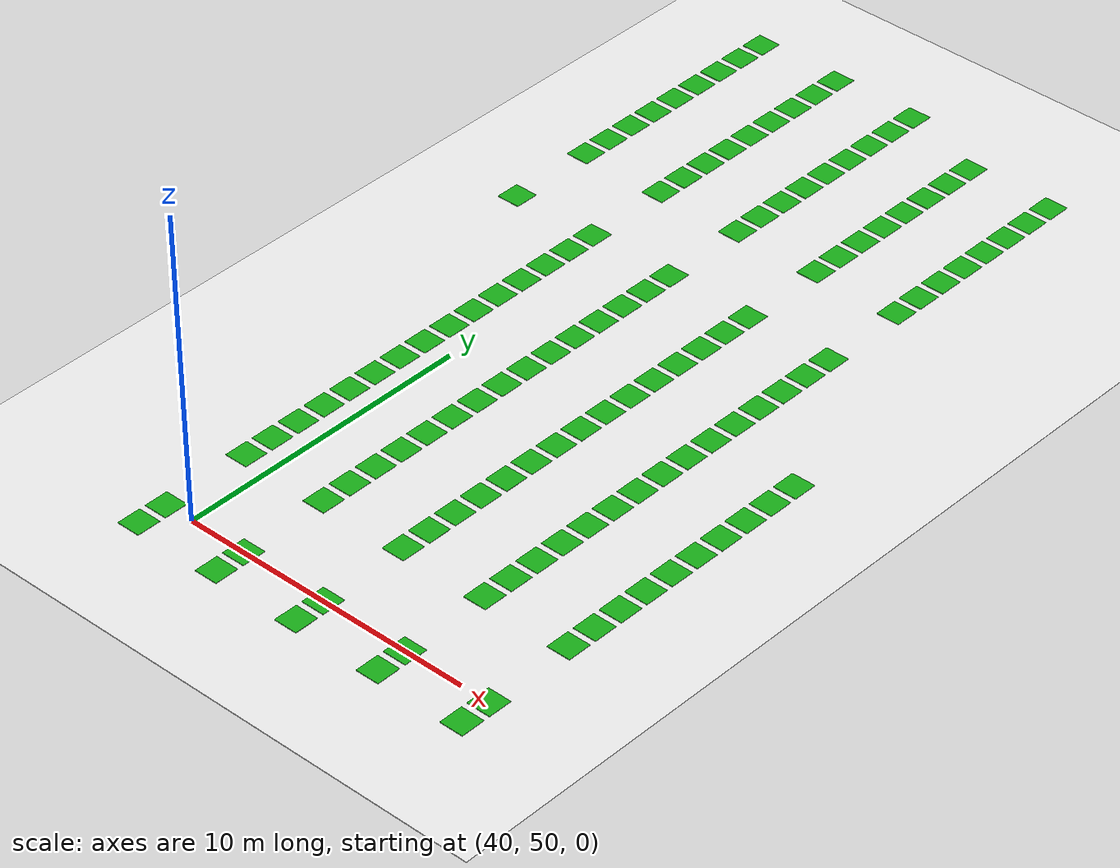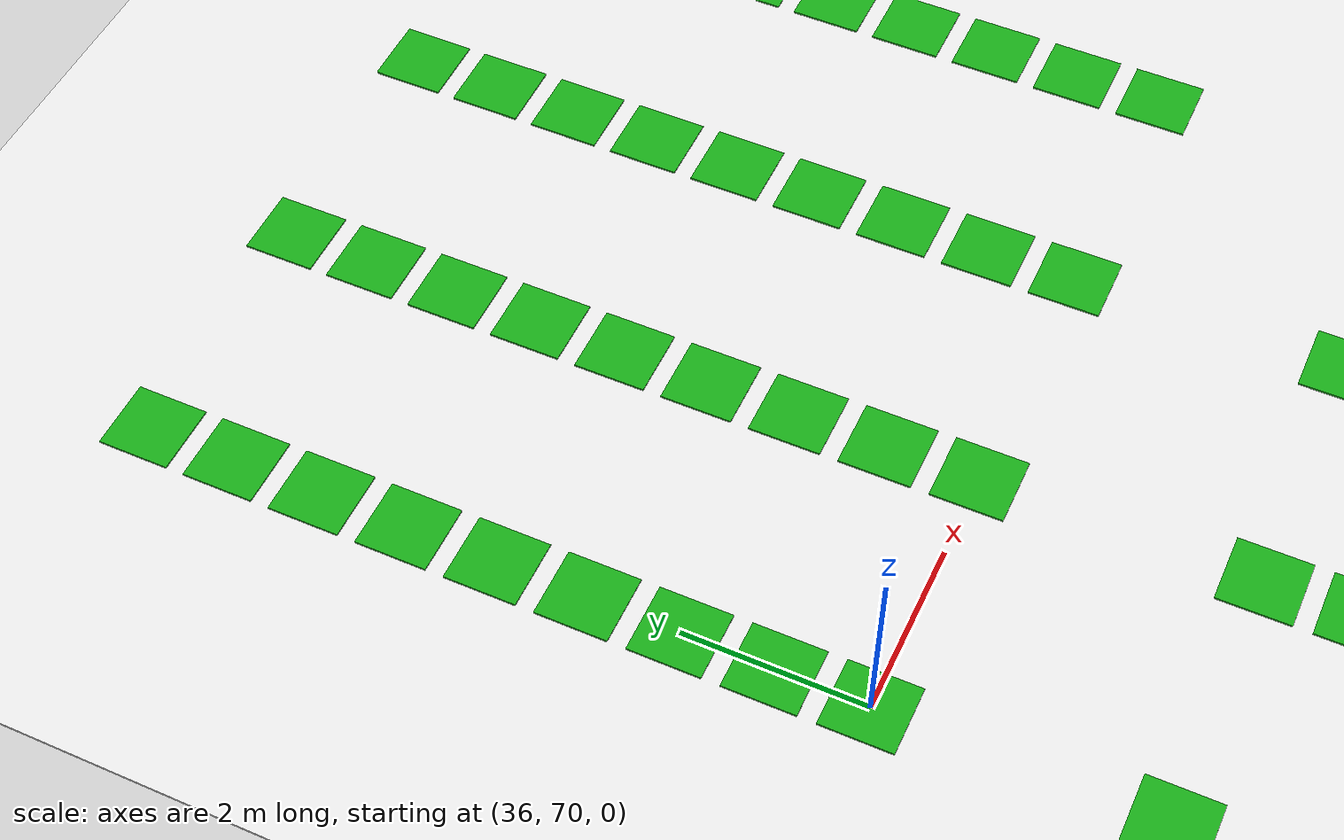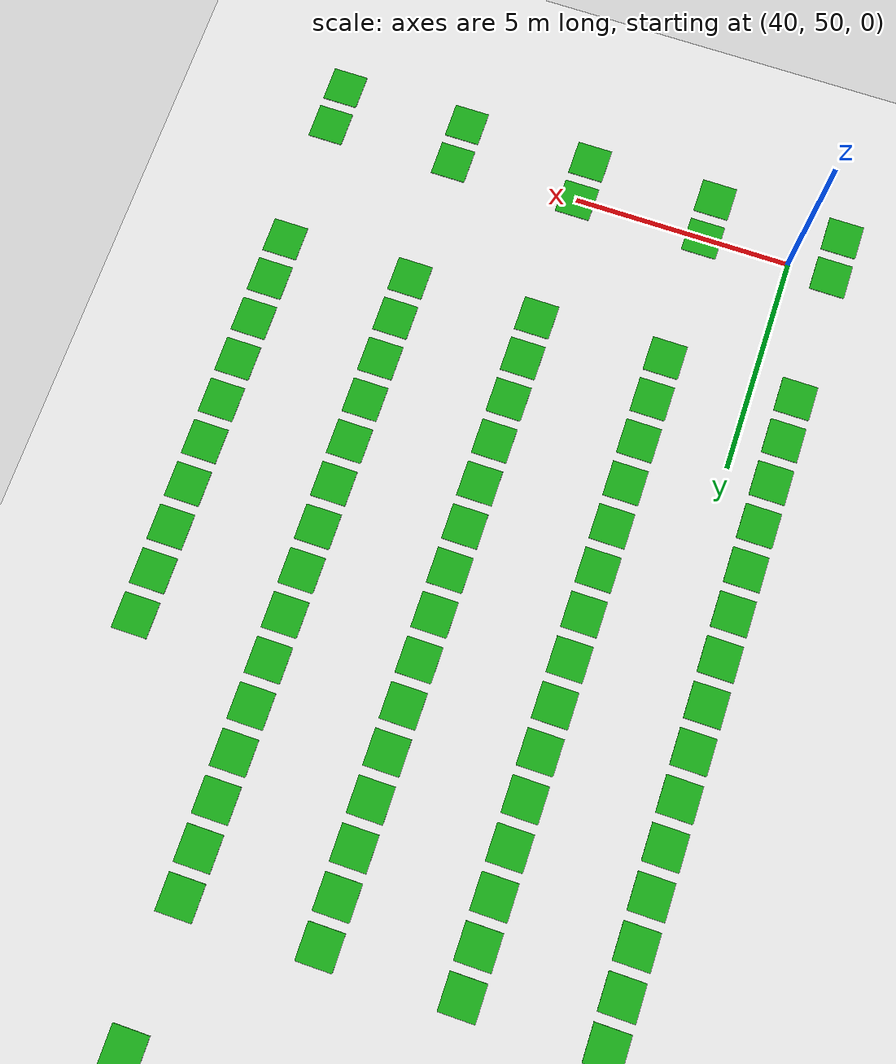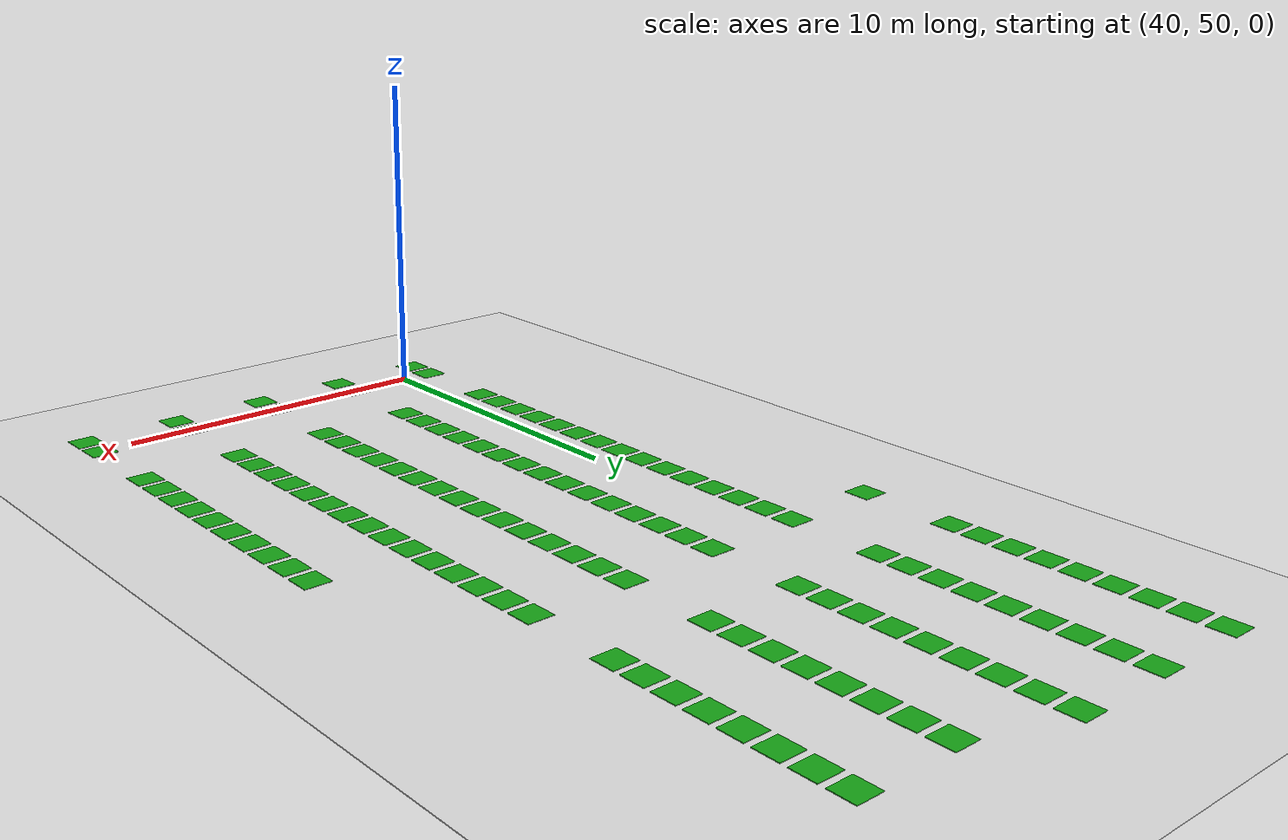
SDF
<sdf version="1.10">
 <world name="my_map">
  <model name="warehouse_floor">
   <static>true</static>
   <pose>39.0
        51.5
        0.0
        0 0 0</pose>
   <link name="floor_link">
    <visual name="floor_visual">
     <geometry><box><size>79.0
                104.0
                0.02</size></box></geometry>
     <material><ambient>0.95 0.95 0.95 1</ambient><diffuse>0.95 0.95 0.95 1</diffuse></material>
    </visual>
   </link>
  </model>
  <model name="shelf_537">
   <static>true</static>
   <pose>36.0
        78.0
        0.02
        0 0 0</pose>
   <link name="link">
    <visual name="visual">
     <geometry><box><size>0.8
                0.8
                0.02</size></box></geometry>
     <material><ambient>0.10 0.70 0.10 1</ambient><diffuse>0.10 0.70 0.10 1</diffuse></material>
    </visual>
   </link>
  </model>
  <model name="shelf_538">
   <static>true</static>
   <pose>39.0
        78.0
        0.02
        0 0 0</pose>
   <link name="link">
    <visual name="visual">
     <geometry><box><size>0.8
                0.8
                0.02</size></box></geometry>
     <material><ambient>0.10 0.70 0.10 1</ambient><diffuse>0.10 0.70 0.10 1</diffuse></material>
    </visual>
   </link>
  </model>
  <model name="shelf_539">
   <static>true</static>
   <pose>42.0
        78.0
        0.02
        0 0 0</pose>
   <link name="link">
    <visual name="visual">
     <geometry><box><size>0.8
                0.8
                0.02</size></box></geometry>
     <material><ambient>0.10 0.70 0.10 1</ambient><diffuse>0.10 0.70 0.10 1</diffuse></material>
    </visual>
   </link>
  </model>
  <model name="shelf_562">
   <static>true</static>
   <pose>36.0
        77.0
        0.02
        0 0 0</pose>
   <link name="link">
    <visual name="visual">
     <geometry><box><size>0.8
                0.8
                0.02</size></box></geometry>
     <material><ambient>0.10 0.70 0.10 1</ambient><diffuse>0.10 0.70 0.10 1</diffuse></material>
    </visual>
   </link>
  </model>
  <model name="shelf_563">
   <static>true</static>
   <pose>39.0
        77.0
        0.02
        0 0 0</pose>
   <link name="link">
    <visual name="visual">
     <geometry><box><size>0.8
                0.8
                0.02</size></box></geometry>
     <material><ambient>0.10 0.70 0.10 1</ambient><diffuse>0.10 0.70 0.10 1</diffuse></material>
    </visual>
   </link>
  </model>
  <model name="shelf_564">
   <static>true</static>
   <pose>42.0
        77.0
        0.02
        0 0 0</pose>
   <link name="link">
    <visual name="visual">
     <geometry><box><size>0.8
                0.8
                0.02</size></box></geometry>
     <material><ambient>0.10 0.70 0.10 1</ambient><diffuse>0.10 0.70 0.10 1</diffuse></material>
    </visual>
   </link>
  </model>
  <model name="shelf_565">
   <static>true</static>
   <pose>45.0
        77.0
        0.02
        0 0 0</pose>
   <link name="link">
    <visual name="visual">
     <geometry><box><size>0.8
                0.8
                0.02</size></box></geometry>
     <material><ambient>0.10 0.70 0.10 1</ambient><diffuse>0.10 0.70 0.10 1</diffuse></material>
    </visual>
   </link>
  </model>
  <model name="shelf_566">
   <static>true</static>
   <pose>48.0
        77.0
        0.02
        0 0 0</pose>
   <link name="link">
    <visual name="visual">
     <geometry><box><size>0.8
                0.8
                0.02</size></box></geometry>
     <material><ambient>0.10 0.70 0.10 1</ambient><diffuse>0.10 0.70 0.10 1</diffuse></material>
    </visual>
   </link>
  </model>
  <model name="shelf_587">
   <static>true</static>
   <pose>36.0
        76.0
        0.02
        0 0 0</pose>
   <link name="link">
    <visual name="visual">
     <geometry><box><size>0.8
                0.8
                0.02</size></box></geometry>
     <material><ambient>0.10 0.70 0.10 1</ambient><diffuse>0.10 0.70 0.10 1</diffuse></material>
    </visual>
   </link>
  </model>
  <model name="shelf_588">
   <static>true</static>
   <pose>39.0
        76.0
        0.02
        0 0 0</pose>
   <link name="link">
    <visual name="visual">
     <geometry><box><size>0.8
                0.8
                0.02</size></box></geometry>
     <material><ambient>0.10 0.70 0.10 1</ambient><diffuse>0.10 0.70 0.10 1</diffuse></material>
    </visual>
   </link>
  </model>
  <model name="shelf_589">
   <static>true</static>
   <pose>42.0
        76.0
        0.02
        0 0 0</pose>
   <link name="link">
    <visual name="visual">
     <geometry><box><size>0.8
                0.8
                0.02</size></box></geometry>
     <material><ambient>0.10 0.70 0.10 1</ambient><diffuse>0.10 0.70 0.10 1</diffuse></material>
    </visual>
   </link>
  </model>
  <model name="shelf_590">
   <static>true</static>
   <pose>45.0
        76.0
        0.02
        0 0 0</pose>
   <link name="link">
    <visual name="visual">
     <geometry><box><size>0.8
                0.8
                0.02</size></box></geometry>
     <material><ambient>0.10 0.70 0.10 1</ambient><diffuse>0.10 0.70 0.10 1</diffuse></material>
    </visual>
   </link>
  </model>
  <model name="shelf_591">
   <static>true</static>
   <pose>48.0
        76.0
        0.02
        0 0 0</pose>
   <link name="link">
    <visual name="visual">
     <geometry><box><size>0.8
                0.8
                0.02</size></box></geometry>
     <material><ambient>0.10 0.70 0.10 1</ambient><diffuse>0.10 0.70 0.10 1</diffuse></material>
    </visual>
   </link>
  </model>
  <model name="shelf_612">
   <static>true</static>
   <pose>36.0
        75.0
        0.02
        0 0 0</pose>
   <link name="link">
    <visual name="visual">
     <geometry><box><size>0.8
                0.8
                0.02</size></box></geometry>
     <material><ambient>0.10 0.70 0.10 1</ambient><diffuse>0.10 0.70 0.10 1</diffuse></material>
    </visual>
   </link>
  </model>
  <model name="shelf_613">
   <static>true</static>
   <pose>39.0
        75.0
        0.02
        0 0 0</pose>
   <link name="link">
    <visual name="visual">
     <geometry><box><size>0.8
                0.8
                0.02</size></box></geometry>
     <material><ambient>0.10 0.70 0.10 1</ambient><diffuse>0.10 0.70 0.10 1</diffuse></material>
    </visual>
   </link>
  </model>
  <model name="shelf_614">
   <static>true</static>
   <pose>42.0
        75.0
        0.02
        0 0 0</pose>
   <link name="link">
    <visual name="visual">
     <geometry><box><size>0.8
                0.8
                0.02</size></box></geometry>
     <material><ambient>0.10 0.70 0.10 1</ambient><diffuse>0.10 0.70 0.10 1</diffuse></material>
    </visual>
   </link>
  </model>
  <model name="shelf_615">
   <static>true</static>
   <pose>45.0
        75.0
        0.02
        0 0 0</pose>
   <link name="link">
    <visual name="visual">
     <geometry><box><size>0.8
                0.8
                0.02</size></box></geometry>
     <material><ambient>0.10 0.70 0.10 1</ambient><diffuse>0.10 0.70 0.10 1</diffuse></material>
    </visual>
   </link>
  </model>
  <model name="shelf_616">
   <static>true</static>
   <pose>48.0
        75.0
        0.02
        0 0 0</pose>
   <link name="link">
    <visual name="visual">
     <geometry><box><size>0.8
                0.8
                0.02</size></box></geometry>
     <material><ambient>0.10 0.70 0.10 1</ambient><diffuse>0.10 0.70 0.10 1</diffuse></material>
    </visual>
   </link>
  </model>
  <model name="shelf_637">
   <static>true</static>
   <pose>36.0
        74.0
        0.02
        0 0 0</pose>
   <link name="link">
    <visual name="visual">
     <geometry><box><size>0.8
                0.8
                0.02</size></box></geometry>
     <material><ambient>0.10 0.70 0.10 1</ambient><diffuse>0.10 0.70 0.10 1</diffuse></material>
    </visual>
   </link>
  </model>
  <model name="shelf_638">
   <static>true</static>
   <pose>39.0
        74.0
        0.02
        0 0 0</pose>
   <link name="link">
    <visual name="visual">
     <geometry><box><size>0.8
                0.8
                0.02</size></box></geometry>
     <material><ambient>0.10 0.70 0.10 1</ambient><diffuse>0.10 0.70 0.10 1</diffuse></material>
    </visual>
   </link>
  </model>
  <model name="shelf_639">
   <static>true</static>
   <pose>42.0
        74.0
        0.02
        0 0 0</pose>
   <link name="link">
    <visual name="visual">
     <geometry><box><size>0.8
                0.8
                0.02</size></box></geometry>
     <material><ambient>0.10 0.70 0.10 1</ambient><diffuse>0.10 0.70 0.10 1</diffuse></material>
    </visual>
   </link>
  </model>
  <model name="shelf_640">
   <static>true</static>
   <pose>45.0
        74.0
        0.02
        0 0 0</pose>
   <link name="link">
    <visual name="visual">
     <geometry><box><size>0.8
                0.8
                0.02</size></box></geometry>
     <material><ambient>0.10 0.70 0.10 1</ambient><diffuse>0.10 0.70 0.10 1</diffuse></material>
    </visual>
   </link>
  </model>
  <model name="shelf_641">
   <static>true</static>
   <pose>48.0
        74.0
        0.02
        0 0 0</pose>
   <link name="link">
    <visual name="visual">
     <geometry><box><size>0.8
                0.8
                0.02</size></box></geometry>
     <material><ambient>0.10 0.70 0.10 1</ambient><diffuse>0.10 0.70 0.10 1</diffuse></material>
    </visual>
   </link>
  </model>
  <model name="shelf_662">
   <static>true</static>
   <pose>36.0
        73.0
        0.02
        0 0 0</pose>
   <link name="link">
    <visual name="visual">
     <geometry><box><size>0.8
                0.8
                0.02</size></box></geometry>
     <material><ambient>0.10 0.70 0.10 1</ambient><diffuse>0.10 0.70 0.10 1</diffuse></material>
    </visual>
   </link>
  </model>
  <model name="shelf_663">
   <static>true</static>
   <pose>39.0
        73.0
        0.02
        0 0 0</pose>
   <link name="link">
    <visual name="visual">
     <geometry><box><size>0.8
                0.8
                0.02</size></box></geometry>
     <material><ambient>0.10 0.70 0.10 1</ambient><diffuse>0.10 0.70 0.10 1</diffuse></material>
    </visual>
   </link>
  </model>
  <model name="shelf_664">
   <static>true</static>
   <pose>42.0
        73.0
        0.02
        0 0 0</pose>
   <link name="link">
    <visual name="visual">
     <geometry><box><size>0.8
                0.8
                0.02</size></box></geometry>
     <material><ambient>0.10 0.70 0.10 1</ambient><diffuse>0.10 0.70 0.10 1</diffuse></material>
    </visual>
   </link>
  </model>
  <model name="shelf_665">
   <static>true</static>
   <pose>45.0
        73.0
        0.02
        0 0 0</pose>
   <link name="link">
    <visual name="visual">
     <geometry><box><size>0.8
                0.8
                0.02</size></box></geometry>
     <material><ambient>0.10 0.70 0.10 1</ambient><diffuse>0.10 0.70 0.10 1</diffuse></material>
    </visual>
   </link>
  </model>
  <model name="shelf_666">
   <static>true</static>
   <pose>48.0
        73.0
        0.02
        0 0 0</pose>
   <link name="link">
    <visual name="visual">
     <geometry><box><size>0.8
                0.8
                0.02</size></box></geometry>
     <material><ambient>0.10 0.70 0.10 1</ambient><diffuse>0.10 0.70 0.10 1</diffuse></material>
    </visual>
   </link>
  </model>
  <model name="shelf_687">
   <static>true</static>
   <pose>36.0
        72.0
        0.02
        0 0 0</pose>
   <link name="link">
    <visual name="visual">
     <geometry><box><size>0.8
                0.8
                0.02</size></box></geometry>
     <material><ambient>0.10 0.70 0.10 1</ambient><diffuse>0.10 0.70 0.10 1</diffuse></material>
    </visual>
   </link>
  </model>
  <model name="shelf_688">
   <static>true</static>
   <pose>39.0
        72.0
        0.02
        0 0 0</pose>
   <link name="link">
    <visual name="visual">
     <geometry><box><size>0.8
                0.8
                0.02</size></box></geometry>
     <material><ambient>0.10 0.70 0.10 1</ambient><diffuse>0.10 0.70 0.10 1</diffuse></material>
    </visual>
   </link>
  </model>
  <model name="shelf_689">
   <static>true</static>
   <pose>42.0
        72.0
        0.02
        0 0 0</pose>
   <link name="link">
    <visual name="visual">
     <geometry><box><size>0.8
                0.8
                0.02</size></box></geometry>
     <material><ambient>0.10 0.70 0.10 1</ambient><diffuse>0.10 0.70 0.10 1</diffuse></material>
    </visual>
   </link>
  </model>
  <model name="shelf_690">
   <static>true</static>
   <pose>45.0
        72.0
        0.02
        0 0 0</pose>
   <link name="link">
    <visual name="visual">
     <geometry><box><size>0.8
                0.8
                0.02</size></box></geometry>
     <material><ambient>0.10 0.70 0.10 1</ambient><diffuse>0.10 0.70 0.10 1</diffuse></material>
    </visual>
   </link>
  </model>
  <model name="shelf_691">
   <static>true</static>
   <pose>48.0
        72.0
        0.02
        0 0 0</pose>
   <link name="link">
    <visual name="visual">
     <geometry><box><size>0.8
                0.8
                0.02</size></box></geometry>
     <material><ambient>0.10 0.70 0.10 1</ambient><diffuse>0.10 0.70 0.10 1</diffuse></material>
    </visual>
   </link>
  </model>
  <model name="shelf_712">
   <static>true</static>
   <pose>36.0
        71.0
        0.02
        0 0 0</pose>
   <link name="link">
    <visual name="visual">
     <geometry><box><size>0.8
                0.8
                0.02</size></box></geometry>
     <material><ambient>0.10 0.70 0.10 1</ambient><diffuse>0.10 0.70 0.10 1</diffuse></material>
    </visual>
   </link>
  </model>
  <model name="shelf_713">
   <static>true</static>
   <pose>39.0
        71.0
        0.02
        0 0 0</pose>
   <link name="link">
    <visual name="visual">
     <geometry><box><size>0.8
                0.8
                0.02</size></box></geometry>
     <material><ambient>0.10 0.70 0.10 1</ambient><diffuse>0.10 0.70 0.10 1</diffuse></material>
    </visual>
   </link>
  </model>
  <model name="shelf_714">
   <static>true</static>
   <pose>42.0
        71.0
        0.02
        0 0 0</pose>
   <link name="link">
    <visual name="visual">
     <geometry><box><size>0.8
                0.8
                0.02</size></box></geometry>
     <material><ambient>0.10 0.70 0.10 1</ambient><diffuse>0.10 0.70 0.10 1</diffuse></material>
    </visual>
   </link>
  </model>
  <model name="shelf_715">
   <static>true</static>
   <pose>45.0
        71.0
        0.02
        0 0 0</pose>
   <link name="link">
    <visual name="visual">
     <geometry><box><size>0.8
                0.8
                0.02</size></box></geometry>
     <material><ambient>0.10 0.70 0.10 1</ambient><diffuse>0.10 0.70 0.10 1</diffuse></material>
    </visual>
   </link>
  </model>
  <model name="shelf_716">
   <static>true</static>
   <pose>48.0
        71.0
        0.02
        0 0 0</pose>
   <link name="link">
    <visual name="visual">
     <geometry><box><size>0.8
                0.8
                0.02</size></box></geometry>
     <material><ambient>0.10 0.70 0.10 1</ambient><diffuse>0.10 0.70 0.10 1</diffuse></material>
    </visual>
   </link>
  </model>
  <model name="shelf_737">
   <static>true</static>
   <pose>36.0
        70.0
        0.02
        0 0 0</pose>
   <link name="link">
    <visual name="visual">
     <geometry><box><size>0.8
                0.8
                0.02</size></box></geometry>
     <material><ambient>0.10 0.70 0.10 1</ambient><diffuse>0.10 0.70 0.10 1</diffuse></material>
    </visual>
   </link>
  </model>
  <model name="shelf_738">
   <static>true</static>
   <pose>39.0
        70.0
        0.02
        0 0 0</pose>
   <link name="link">
    <visual name="visual">
     <geometry><box><size>0.8
                0.8
                0.02</size></box></geometry>
     <material><ambient>0.10 0.70 0.10 1</ambient><diffuse>0.10 0.70 0.10 1</diffuse></material>
    </visual>
   </link>
  </model>
  <model name="shelf_739">
   <static>true</static>
   <pose>42.0
        70.0
        0.02
        0 0 0</pose>
   <link name="link">
    <visual name="visual">
     <geometry><box><size>0.8
                0.8
                0.02</size></box></geometry>
     <material><ambient>0.10 0.70 0.10 1</ambient><diffuse>0.10 0.70 0.10 1</diffuse></material>
    </visual>
   </link>
  </model>
  <model name="shelf_740">
   <static>true</static>
   <pose>45.0
        70.0
        0.02
        0 0 0</pose>
   <link name="link">
    <visual name="visual">
     <geometry><box><size>0.8
                0.8
                0.02</size></box></geometry>
     <material><ambient>0.10 0.70 0.10 1</ambient><diffuse>0.10 0.70 0.10 1</diffuse></material>
    </visual>
   </link>
  </model>
  <model name="shelf_741">
   <static>true</static>
   <pose>48.0
        70.0
        0.02
        0 0 0</pose>
   <link name="link">
    <visual name="visual">
     <geometry><box><size>0.8
                0.8
                0.02</size></box></geometry>
     <material><ambient>0.10 0.70 0.10 1</ambient><diffuse>0.10 0.70 0.10 1</diffuse></material>
    </visual>
   </link>
  </model>
  <model name="shelf_762">
   <static>true</static>
   <pose>36.0
        67.0
        0.02
        0 0 0</pose>
   <link name="link">
    <visual name="visual">
     <geometry><box><size>0.8
                0.8
                0.02</size></box></geometry>
     <material><ambient>0.10 0.70 0.10 1</ambient><diffuse>0.10 0.70 0.10 1</diffuse></material>
    </visual>
   </link>
  </model>
  <model name="shelf_763">
   <static>true</static>
   <pose>39.0
        67.0
        0.02
        0 0 0</pose>
   <link name="link">
    <visual name="visual">
     <geometry><box><size>0.8
                0.8
                0.02</size></box></geometry>
     <material><ambient>0.10 0.70 0.10 1</ambient><diffuse>0.10 0.70 0.10 1</diffuse></material>
    </visual>
   </link>
  </model>
  <model name="shelf_764">
   <static>true</static>
   <pose>42.0
        67.0
        0.02
        0 0 0</pose>
   <link name="link">
    <visual name="visual">
     <geometry><box><size>0.8
                0.8
                0.02</size></box></geometry>
     <material><ambient>0.10 0.70 0.10 1</ambient><diffuse>0.10 0.70 0.10 1</diffuse></material>
    </visual>
   </link>
  </model>
  <model name="shelf_765">
   <static>true</static>
   <pose>45.0
        67.0
        0.02
        0 0 0</pose>
   <link name="link">
    <visual name="visual">
     <geometry><box><size>0.8
                0.8
                0.02</size></box></geometry>
     <material><ambient>0.10 0.70 0.10 1</ambient><diffuse>0.10 0.70 0.10 1</diffuse></material>
    </visual>
   </link>
  </model>
  <model name="shelf_766">
   <static>true</static>
   <pose>48.0
        67.0
        0.02
        0 0 0</pose>
   <link name="link">
    <visual name="visual">
     <geometry><box><size>0.8
                0.8
                0.02</size></box></geometry>
     <material><ambient>0.10 0.70 0.10 1</ambient><diffuse>0.10 0.70 0.10 1</diffuse></material>
    </visual>
   </link>
  </model>
  <model name="shelf_788">
   <static>true</static>
   <pose>39.0
        66.0
        0.02
        0 0 0</pose>
   <link name="link">
    <visual name="visual">
     <geometry><box><size>0.8
                0.8
                0.02</size></box></geometry>
     <material><ambient>0.10 0.70 0.10 1</ambient><diffuse>0.10 0.70 0.10 1</diffuse></material>
    </visual>
   </link>
  </model>
  <model name="shelf_789">
   <static>true</static>
   <pose>42.0
        66.0
        0.02
        0 0 0</pose>
   <link name="link">
    <visual name="visual">
     <geometry><box><size>0.8
                0.8
                0.02</size></box></geometry>
     <material><ambient>0.10 0.70 0.10 1</ambient><diffuse>0.10 0.70 0.10 1</diffuse></material>
    </visual>
   </link>
  </model>
  <model name="shelf_790">
   <static>true</static>
   <pose>45.0
        66.0
        0.02
        0 0 0</pose>
   <link name="link">
    <visual name="visual">
     <geometry><box><size>0.8
                0.8
                0.02</size></box></geometry>
     <material><ambient>0.10 0.70 0.10 1</ambient><diffuse>0.10 0.70 0.10 1</diffuse></material>
    </visual>
   </link>
  </model>
  <model name="shelf_791">
   <static>true</static>
   <pose>48.0
        66.0
        0.02
        0 0 0</pose>
   <link name="link">
    <visual name="visual">
     <geometry><box><size>0.8
                0.8
                0.02</size></box></geometry>
     <material><ambient>0.10 0.70 0.10 1</ambient><diffuse>0.10 0.70 0.10 1</diffuse></material>
    </visual>
   </link>
  </model>
  <model name="shelf_813">
   <static>true</static>
   <pose>39.0
        65.0
        0.02
        0 0 0</pose>
   <link name="link">
    <visual name="visual">
     <geometry><box><size>0.8
                0.8
                0.02</size></box></geometry>
     <material><ambient>0.10 0.70 0.10 1</ambient><diffuse>0.10 0.70 0.10 1</diffuse></material>
    </visual>
   </link>
  </model>
  <model name="shelf_814">
   <static>true</static>
   <pose>42.0
        65.0
        0.02
        0 0 0</pose>
   <link name="link">
    <visual name="visual">
     <geometry><box><size>0.8
                0.8
                0.02</size></box></geometry>
     <material><ambient>0.10 0.70 0.10 1</ambient><diffuse>0.10 0.70 0.10 1</diffuse></material>
    </visual>
   </link>
  </model>
  <model name="shelf_815">
   <static>true</static>
   <pose>45.0
        65.0
        0.02
        0 0 0</pose>
   <link name="link">
    <visual name="visual">
     <geometry><box><size>0.8
                0.8
                0.02</size></box></geometry>
     <material><ambient>0.10 0.70 0.10 1</ambient><diffuse>0.10 0.70 0.10 1</diffuse></material>
    </visual>
   </link>
  </model>
  <model name="shelf_816">
   <static>true</static>
   <pose>48.0
        65.0
        0.02
        0 0 0</pose>
   <link name="link">
    <visual name="visual">
     <geometry><box><size>0.8
                0.8
                0.02</size></box></geometry>
     <material><ambient>0.10 0.70 0.10 1</ambient><diffuse>0.10 0.70 0.10 1</diffuse></material>
    </visual>
   </link>
  </model>
  <model name="shelf_838">
   <static>true</static>
   <pose>39.0
        64.0
        0.02
        0 0 0</pose>
   <link name="link">
    <visual name="visual">
     <geometry><box><size>0.8
                0.8
                0.02</size></box></geometry>
     <material><ambient>0.10 0.70 0.10 1</ambient><diffuse>0.10 0.70 0.10 1</diffuse></material>
    </visual>
   </link>
  </model>
  <model name="shelf_839">
   <static>true</static>
   <pose>42.0
        64.0
        0.02
        0 0 0</pose>
   <link name="link">
    <visual name="visual">
     <geometry><box><size>0.8
                0.8
                0.02</size></box></geometry>
     <material><ambient>0.10 0.70 0.10 1</ambient><diffuse>0.10 0.70 0.10 1</diffuse></material>
    </visual>
   </link>
  </model>
  <model name="shelf_840">
   <static>true</static>
   <pose>45.0
        64.0
        0.02
        0 0 0</pose>
   <link name="link">
    <visual name="visual">
     <geometry><box><size>0.8
                0.8
                0.02</size></box></geometry>
     <material><ambient>0.10 0.70 0.10 1</ambient><diffuse>0.10 0.70 0.10 1</diffuse></material>
    </visual>
   </link>
  </model>
  <model name="shelf_841">
   <static>true</static>
   <pose>48.0
        64.0
        0.02
        0 0 0</pose>
   <link name="link">
    <visual name="visual">
     <geometry><box><size>0.8
                0.8
                0.02</size></box></geometry>
     <material><ambient>0.10 0.70 0.10 1</ambient><diffuse>0.10 0.70 0.10 1</diffuse></material>
    </visual>
   </link>
  </model>
  <model name="shelf_863">
   <static>true</static>
   <pose>39.0
        63.0
        0.02
        0 0 0</pose>
   <link name="link">
    <visual name="visual">
     <geometry><box><size>0.8
                0.8
                0.02</size></box></geometry>
     <material><ambient>0.10 0.70 0.10 1</ambient><diffuse>0.10 0.70 0.10 1</diffuse></material>
    </visual>
   </link>
  </model>
  <model name="shelf_864">
   <static>true</static>
   <pose>42.0
        63.0
        0.02
        0 0 0</pose>
   <link name="link">
    <visual name="visual">
     <geometry><box><size>0.8
                0.8
                0.02</size></box></geometry>
     <material><ambient>0.10 0.70 0.10 1</ambient><diffuse>0.10 0.70 0.10 1</diffuse></material>
    </visual>
   </link>
  </model>
  <model name="shelf_865">
   <static>true</static>
   <pose>45.0
        63.0
        0.02
        0 0 0</pose>
   <link name="link">
    <visual name="visual">
     <geometry><box><size>0.8
                0.8
                0.02</size></box></geometry>
     <material><ambient>0.10 0.70 0.10 1</ambient><diffuse>0.10 0.70 0.10 1</diffuse></material>
    </visual>
   </link>
  </model>
  <model name="shelf_866">
   <static>true</static>
   <pose>48.0
        63.0
        0.02
        0 0 0</pose>
   <link name="link">
    <visual name="visual">
     <geometry><box><size>0.8
                0.8
                0.02</size></box></geometry>
     <material><ambient>0.10 0.70 0.10 1</ambient><diffuse>0.10 0.70 0.10 1</diffuse></material>
    </visual>
   </link>
  </model>
  <model name="shelf_888">
   <static>true</static>
   <pose>39.0
        62.0
        0.02
        0 0 0</pose>
   <link name="link">
    <visual name="visual">
     <geometry><box><size>0.8
                0.8
                0.02</size></box></geometry>
     <material><ambient>0.10 0.70 0.10 1</ambient><diffuse>0.10 0.70 0.10 1</diffuse></material>
    </visual>
   </link>
  </model>
  <model name="shelf_889">
   <static>true</static>
   <pose>42.0
        62.0
        0.02
        0 0 0</pose>
   <link name="link">
    <visual name="visual">
     <geometry><box><size>0.8
                0.8
                0.02</size></box></geometry>
     <material><ambient>0.10 0.70 0.10 1</ambient><diffuse>0.10 0.70 0.10 1</diffuse></material>
    </visual>
   </link>
  </model>
  <model name="shelf_890">
   <static>true</static>
   <pose>45.0
        62.0
        0.02
        0 0 0</pose>
   <link name="link">
    <visual name="visual">
     <geometry><box><size>0.8
                0.8
                0.02</size></box></geometry>
     <material><ambient>0.10 0.70 0.10 1</ambient><diffuse>0.10 0.70 0.10 1</diffuse></material>
    </visual>
   </link>
  </model>
  <model name="shelf_891">
   <static>true</static>
   <pose>48.0
        62.0
        0.02
        0 0 0</pose>
   <link name="link">
    <visual name="visual">
     <geometry><box><size>0.8
                0.8
                0.02</size></box></geometry>
     <material><ambient>0.10 0.70 0.10 1</ambient><diffuse>0.10 0.70 0.10 1</diffuse></material>
    </visual>
   </link>
  </model>
  <model name="shelf_892">
   <static>true</static>
   <pose>51.0
        62.0
        0.02
        0 0 0</pose>
   <link name="link">
    <visual name="visual">
     <geometry><box><size>0.8
                0.8
                0.02</size></box></geometry>
     <material><ambient>0.10 0.70 0.10 1</ambient><diffuse>0.10 0.70 0.10 1</diffuse></material>
    </visual>
   </link>
  </model>
  <model name="shelf_913">
   <static>true</static>
   <pose>39.0
        61.0
        0.02
        0 0 0</pose>
   <link name="link">
    <visual name="visual">
     <geometry><box><size>0.8
                0.8
                0.02</size></box></geometry>
     <material><ambient>0.10 0.70 0.10 1</ambient><diffuse>0.10 0.70 0.10 1</diffuse></material>
    </visual>
   </link>
  </model>
  <model name="shelf_914">
   <static>true</static>
   <pose>42.0
        61.0
        0.02
        0 0 0</pose>
   <link name="link">
    <visual name="visual">
     <geometry><box><size>0.8
                0.8
                0.02</size></box></geometry>
     <material><ambient>0.10 0.70 0.10 1</ambient><diffuse>0.10 0.70 0.10 1</diffuse></material>
    </visual>
   </link>
  </model>
  <model name="shelf_915">
   <static>true</static>
   <pose>45.0
        61.0
        0.02
        0 0 0</pose>
   <link name="link">
    <visual name="visual">
     <geometry><box><size>0.8
                0.8
                0.02</size></box></geometry>
     <material><ambient>0.10 0.70 0.10 1</ambient><diffuse>0.10 0.70 0.10 1</diffuse></material>
    </visual>
   </link>
  </model>
  <model name="shelf_916">
   <static>true</static>
   <pose>48.0
        61.0
        0.02
        0 0 0</pose>
   <link name="link">
    <visual name="visual">
     <geometry><box><size>0.8
                0.8
                0.02</size></box></geometry>
     <material><ambient>0.10 0.70 0.10 1</ambient><diffuse>0.10 0.70 0.10 1</diffuse></material>
    </visual>
   </link>
  </model>
  <model name="shelf_917">
   <static>true</static>
   <pose>51.0
        61.0
        0.02
        0 0 0</pose>
   <link name="link">
    <visual name="visual">
     <geometry><box><size>0.8
                0.8
                0.02</size></box></geometry>
     <material><ambient>0.10 0.70 0.10 1</ambient><diffuse>0.10 0.70 0.10 1</diffuse></material>
    </visual>
   </link>
  </model>
  <model name="shelf_938">
   <static>true</static>
   <pose>39.0
        60.0
        0.02
        0 0 0</pose>
   <link name="link">
    <visual name="visual">
     <geometry><box><size>0.8
                0.8
                0.02</size></box></geometry>
     <material><ambient>0.10 0.70 0.10 1</ambient><diffuse>0.10 0.70 0.10 1</diffuse></material>
    </visual>
   </link>
  </model>
  <model name="shelf_939">
   <static>true</static>
   <pose>42.0
        60.0
        0.02
        0 0 0</pose>
   <link name="link">
    <visual name="visual">
     <geometry><box><size>0.8
                0.8
                0.02</size></box></geometry>
     <material><ambient>0.10 0.70 0.10 1</ambient><diffuse>0.10 0.70 0.10 1</diffuse></material>
    </visual>
   </link>
  </model>
  <model name="shelf_940">
   <static>true</static>
   <pose>45.0
        60.0
        0.02
        0 0 0</pose>
   <link name="link">
    <visual name="visual">
     <geometry><box><size>0.8
                0.8
                0.02</size></box></geometry>
     <material><ambient>0.10 0.70 0.10 1</ambient><diffuse>0.10 0.70 0.10 1</diffuse></material>
    </visual>
   </link>
  </model>
  <model name="shelf_941">
   <static>true</static>
   <pose>48.0
        60.0
        0.02
        0 0 0</pose>
   <link name="link">
    <visual name="visual">
     <geometry><box><size>0.8
                0.8
                0.02</size></box></geometry>
     <material><ambient>0.10 0.70 0.10 1</ambient><diffuse>0.10 0.70 0.10 1</diffuse></material>
    </visual>
   </link>
  </model>
  <model name="shelf_942">
   <static>true</static>
   <pose>51.0
        60.0
        0.02
        0 0 0</pose>
   <link name="link">
    <visual name="visual">
     <geometry><box><size>0.8
                0.8
                0.02</size></box></geometry>
     <material><ambient>0.10 0.70 0.10 1</ambient><diffuse>0.10 0.70 0.10 1</diffuse></material>
    </visual>
   </link>
  </model>
  <model name="shelf_963">
   <static>true</static>
   <pose>39.0
        59.0
        0.02
        0 0 0</pose>
   <link name="link">
    <visual name="visual">
     <geometry><box><size>0.8
                0.8
                0.02</size></box></geometry>
     <material><ambient>0.10 0.70 0.10 1</ambient><diffuse>0.10 0.70 0.10 1</diffuse></material>
    </visual>
   </link>
  </model>
  <model name="shelf_964">
   <static>true</static>
   <pose>42.0
        59.0
        0.02
        0 0 0</pose>
   <link name="link">
    <visual name="visual">
     <geometry><box><size>0.8
                0.8
                0.02</size></box></geometry>
     <material><ambient>0.10 0.70 0.10 1</ambient><diffuse>0.10 0.70 0.10 1</diffuse></material>
    </visual>
   </link>
  </model>
  <model name="shelf_965">
   <static>true</static>
   <pose>45.0
        59.0
        0.02
        0 0 0</pose>
   <link name="link">
    <visual name="visual">
     <geometry><box><size>0.8
                0.8
                0.02</size></box></geometry>
     <material><ambient>0.10 0.70 0.10 1</ambient><diffuse>0.10 0.70 0.10 1</diffuse></material>
    </visual>
   </link>
  </model>
  <model name="shelf_966">
   <static>true</static>
   <pose>48.0
        59.0
        0.02
        0 0 0</pose>
   <link name="link">
    <visual name="visual">
     <geometry><box><size>0.8
                0.8
                0.02</size></box></geometry>
     <material><ambient>0.10 0.70 0.10 1</ambient><diffuse>0.10 0.70 0.10 1</diffuse></material>
    </visual>
   </link>
  </model>
  <model name="shelf_967">
   <static>true</static>
   <pose>51.0
        59.0
        0.02
        0 0 0</pose>
   <link name="link">
    <visual name="visual">
     <geometry><box><size>0.8
                0.8
                0.02</size></box></geometry>
     <material><ambient>0.10 0.70 0.10 1</ambient><diffuse>0.10 0.70 0.10 1</diffuse></material>
    </visual>
   </link>
  </model>
  <model name="shelf_988">
   <static>true</static>
   <pose>39.0
        58.0
        0.02
        0 0 0</pose>
   <link name="link">
    <visual name="visual">
     <geometry><box><size>0.8
                0.8
                0.02</size></box></geometry>
     <material><ambient>0.10 0.70 0.10 1</ambient><diffuse>0.10 0.70 0.10 1</diffuse></material>
    </visual>
   </link>
  </model>
  <model name="shelf_989">
   <static>true</static>
   <pose>42.0
        58.0
        0.02
        0 0 0</pose>
   <link name="link">
    <visual name="visual">
     <geometry><box><size>0.8
                0.8
                0.02</size></box></geometry>
     <material><ambient>0.10 0.70 0.10 1</ambient><diffuse>0.10 0.70 0.10 1</diffuse></material>
    </visual>
   </link>
  </model>
  <model name="shelf_990">
   <static>true</static>
   <pose>45.0
        58.0
        0.02
        0 0 0</pose>
   <link name="link">
    <visual name="visual">
     <geometry><box><size>0.8
                0.8
                0.02</size></box></geometry>
     <material><ambient>0.10 0.70 0.10 1</ambient><diffuse>0.10 0.70 0.10 1</diffuse></material>
    </visual>
   </link>
  </model>
  <model name="shelf_991">
   <static>true</static>
   <pose>48.0
        58.0
        0.02
        0 0 0</pose>
   <link name="link">
    <visual name="visual">
     <geometry><box><size>0.8
                0.8
                0.02</size></box></geometry>
     <material><ambient>0.10 0.70 0.10 1</ambient><diffuse>0.10 0.70 0.10 1</diffuse></material>
    </visual>
   </link>
  </model>
  <model name="shelf_992">
   <static>true</static>
   <pose>51.0
        58.0
        0.02
        0 0 0</pose>
   <link name="link">
    <visual name="visual">
     <geometry><box><size>0.8
                0.8
                0.02</size></box></geometry>
     <material><ambient>0.10 0.70 0.10 1</ambient><diffuse>0.10 0.70 0.10 1</diffuse></material>
    </visual>
   </link>
  </model>
  <model name="shelf_1013">
   <static>true</static>
   <pose>39.0
        57.0
        0.02
        0 0 0</pose>
   <link name="link">
    <visual name="visual">
     <geometry><box><size>0.8
                0.8
                0.02</size></box></geometry>
     <material><ambient>0.10 0.70 0.10 1</ambient><diffuse>0.10 0.70 0.10 1</diffuse></material>
    </visual>
   </link>
  </model>
  <model name="shelf_1014">
   <static>true</static>
   <pose>42.0
        57.0
        0.02
        0 0 0</pose>
   <link name="link">
    <visual name="visual">
     <geometry><box><size>0.8
                0.8
                0.02</size></box></geometry>
     <material><ambient>0.10 0.70 0.10 1</ambient><diffuse>0.10 0.70 0.10 1</diffuse></material>
    </visual>
   </link>
  </model>
  <model name="shelf_1015">
   <static>true</static>
   <pose>45.0
        57.0
        0.02
        0 0 0</pose>
   <link name="link">
    <visual name="visual">
     <geometry><box><size>0.8
                0.8
                0.02</size></box></geometry>
     <material><ambient>0.10 0.70 0.10 1</ambient><diffuse>0.10 0.70 0.10 1</diffuse></material>
    </visual>
   </link>
  </model>
  <model name="shelf_1016">
   <static>true</static>
   <pose>48.0
        57.0
        0.02
        0 0 0</pose>
   <link name="link">
    <visual name="visual">
     <geometry><box><size>0.8
                0.8
                0.02</size></box></geometry>
     <material><ambient>0.10 0.70 0.10 1</ambient><diffuse>0.10 0.70 0.10 1</diffuse></material>
    </visual>
   </link>
  </model>
  <model name="shelf_1017">
   <static>true</static>
   <pose>51.0
        57.0
        0.02
        0 0 0</pose>
   <link name="link">
    <visual name="visual">
     <geometry><box><size>0.8
                0.8
                0.02</size></box></geometry>
     <material><ambient>0.10 0.70 0.10 1</ambient><diffuse>0.10 0.70 0.10 1</diffuse></material>
    </visual>
   </link>
  </model>
  <model name="shelf_1038">
   <static>true</static>
   <pose>39.0
        56.0
        0.02
        0 0 0</pose>
   <link name="link">
    <visual name="visual">
     <geometry><box><size>0.8
                0.8
                0.02</size></box></geometry>
     <material><ambient>0.10 0.70 0.10 1</ambient><diffuse>0.10 0.70 0.10 1</diffuse></material>
    </visual>
   </link>
  </model>
  <model name="shelf_1039">
   <static>true</static>
   <pose>42.0
        56.0
        0.02
        0 0 0</pose>
   <link name="link">
    <visual name="visual">
     <geometry><box><size>0.8
                0.8
                0.02</size></box></geometry>
     <material><ambient>0.10 0.70 0.10 1</ambient><diffuse>0.10 0.70 0.10 1</diffuse></material>
    </visual>
   </link>
  </model>
  <model name="shelf_1040">
   <static>true</static>
   <pose>45.0
        56.0
        0.02
        0 0 0</pose>
   <link name="link">
    <visual name="visual">
     <geometry><box><size>0.8
                0.8
                0.02</size></box></geometry>
     <material><ambient>0.10 0.70 0.10 1</ambient><diffuse>0.10 0.70 0.10 1</diffuse></material>
    </visual>
   </link>
  </model>
  <model name="shelf_1041">
   <static>true</static>
   <pose>48.0
        56.0
        0.02
        0 0 0</pose>
   <link name="link">
    <visual name="visual">
     <geometry><box><size>0.8
                0.8
                0.02</size></box></geometry>
     <material><ambient>0.10 0.70 0.10 1</ambient><diffuse>0.10 0.70 0.10 1</diffuse></material>
    </visual>
   </link>
  </model>
  <model name="shelf_1042">
   <static>true</static>
   <pose>51.0
        56.0
        0.02
        0 0 0</pose>
   <link name="link">
    <visual name="visual">
     <geometry><box><size>0.8
                0.8
                0.02</size></box></geometry>
     <material><ambient>0.10 0.70 0.10 1</ambient><diffuse>0.10 0.70 0.10 1</diffuse></material>
    </visual>
   </link>
  </model>
  <model name="shelf_1063">
   <static>true</static>
   <pose>39.0
        55.0
        0.02
        0 0 0</pose>
   <link name="link">
    <visual name="visual">
     <geometry><box><size>0.8
                0.8
                0.02</size></box></geometry>
     <material><ambient>0.10 0.70 0.10 1</ambient><diffuse>0.10 0.70 0.10 1</diffuse></material>
    </visual>
   </link>
  </model>
  <model name="shelf_1064">
   <static>true</static>
   <pose>42.0
        55.0
        0.02
        0 0 0</pose>
   <link name="link">
    <visual name="visual">
     <geometry><box><size>0.8
                0.8
                0.02</size></box></geometry>
     <material><ambient>0.10 0.70 0.10 1</ambient><diffuse>0.10 0.70 0.10 1</diffuse></material>
    </visual>
   </link>
  </model>
  <model name="shelf_1065">
   <static>true</static>
   <pose>45.0
        55.0
        0.02
        0 0 0</pose>
   <link name="link">
    <visual name="visual">
     <geometry><box><size>0.8
                0.8
                0.02</size></box></geometry>
     <material><ambient>0.10 0.70 0.10 1</ambient><diffuse>0.10 0.70 0.10 1</diffuse></material>
    </visual>
   </link>
  </model>
  <model name="shelf_1066">
   <static>true</static>
   <pose>48.0
        55.0
        0.02
        0 0 0</pose>
   <link name="link">
    <visual name="visual">
     <geometry><box><size>0.8
                0.8
                0.02</size></box></geometry>
     <material><ambient>0.10 0.70 0.10 1</ambient><diffuse>0.10 0.70 0.10 1</diffuse></material>
    </visual>
   </link>
  </model>
  <model name="shelf_1067">
   <static>true</static>
   <pose>51.0
        55.0
        0.02
        0 0 0</pose>
   <link name="link">
    <visual name="visual">
     <geometry><box><size>0.8
                0.8
                0.02</size></box></geometry>
     <material><ambient>0.10 0.70 0.10 1</ambient><diffuse>0.10 0.70 0.10 1</diffuse></material>
    </visual>
   </link>
  </model>
  <model name="shelf_1088">
   <static>true</static>
   <pose>39.0
        54.0
        0.02
        0 0 0</pose>
   <link name="link">
    <visual name="visual">
     <geometry><box><size>0.8
                0.8
                0.02</size></box></geometry>
     <material><ambient>0.10 0.70 0.10 1</ambient><diffuse>0.10 0.70 0.10 1</diffuse></material>
    </visual>
   </link>
  </model>
  <model name="shelf_1089">
   <static>true</static>
   <pose>42.0
        54.0
        0.02
        0 0 0</pose>
   <link name="link">
    <visual name="visual">
     <geometry><box><size>0.8
                0.8
                0.02</size></box></geometry>
     <material><ambient>0.10 0.70 0.10 1</ambient><diffuse>0.10 0.70 0.10 1</diffuse></material>
    </visual>
   </link>
  </model>
  <model name="shelf_1090">
   <static>true</static>
   <pose>45.0
        54.0
        0.02
        0 0 0</pose>
   <link name="link">
    <visual name="visual">
     <geometry><box><size>0.8
                0.8
                0.02</size></box></geometry>
     <material><ambient>0.10 0.70 0.10 1</ambient><diffuse>0.10 0.70 0.10 1</diffuse></material>
    </visual>
   </link>
  </model>
  <model name="shelf_1091">
   <static>true</static>
   <pose>48.0
        54.0
        0.02
        0 0 0</pose>
   <link name="link">
    <visual name="visual">
     <geometry><box><size>0.8
                0.8
                0.02</size></box></geometry>
     <material><ambient>0.10 0.70 0.10 1</ambient><diffuse>0.10 0.70 0.10 1</diffuse></material>
    </visual>
   </link>
  </model>
  <model name="shelf_1092">
   <static>true</static>
   <pose>51.0
        54.0
        0.02
        0 0 0</pose>
   <link name="link">
    <visual name="visual">
     <geometry><box><size>0.8
                0.8
                0.02</size></box></geometry>
     <material><ambient>0.10 0.70 0.10 1</ambient><diffuse>0.10 0.70 0.10 1</diffuse></material>
    </visual>
   </link>
  </model>
  <model name="shelf_1113">
   <static>true</static>
   <pose>39.0
        53.0
        0.02
        0 0 0</pose>
   <link name="link">
    <visual name="visual">
     <geometry><box><size>0.8
                0.8
                0.02</size></box></geometry>
     <material><ambient>0.10 0.70 0.10 1</ambient><diffuse>0.10 0.70 0.10 1</diffuse></material>
    </visual>
   </link>
  </model>
  <model name="shelf_1114">
   <static>true</static>
   <pose>42.0
        53.0
        0.02
        0 0 0</pose>
   <link name="link">
    <visual name="visual">
     <geometry><box><size>0.8
                0.8
                0.02</size></box></geometry>
     <material><ambient>0.10 0.70 0.10 1</ambient><diffuse>0.10 0.70 0.10 1</diffuse></material>
    </visual>
   </link>
  </model>
  <model name="shelf_1115">
   <static>true</static>
   <pose>45.0
        53.0
        0.02
        0 0 0</pose>
   <link name="link">
    <visual name="visual">
     <geometry><box><size>0.8
                0.8
                0.02</size></box></geometry>
     <material><ambient>0.10 0.70 0.10 1</ambient><diffuse>0.10 0.70 0.10 1</diffuse></material>
    </visual>
   </link>
  </model>
  <model name="shelf_1116">
   <static>true</static>
   <pose>48.0
        53.0
        0.02
        0 0 0</pose>
   <link name="link">
    <visual name="visual">
     <geometry><box><size>0.8
                0.8
                0.02</size></box></geometry>
     <material><ambient>0.10 0.70 0.10 1</ambient><diffuse>0.10 0.70 0.10 1</diffuse></material>
    </visual>
   </link>
  </model>
  <model name="shelf_1117">
   <static>true</static>
   <pose>51.0
        53.0
        0.02
        0 0 0</pose>
   <link name="link">
    <visual name="visual">
     <geometry><box><size>0.8
                0.8
                0.02</size></box></geometry>
     <material><ambient>0.10 0.70 0.10 1</ambient><diffuse>0.10 0.70 0.10 1</diffuse></material>
    </visual>
   </link>
  </model>
  <model name="shelf_1138">
   <static>true</static>
   <pose>39.0
        50.0
        0.02
        0 0 0</pose>
   <link name="link">
    <visual name="visual">
     <geometry><box><size>0.8
                0.8
                0.02</size></box></geometry>
     <material><ambient>0.10 0.70 0.10 1</ambient><diffuse>0.10 0.70 0.10 1</diffuse></material>
    </visual>
   </link>
  </model>
  <model name="shelf_1139">
   <static>true</static>
   <pose>42.0
        50.0
        0.02
        0 0 0</pose>
   <link name="link">
    <visual name="visual">
     <geometry><box><size>0.8
                0.8
                0.02</size></box></geometry>
     <material><ambient>0.10 0.70 0.10 1</ambient><diffuse>0.10 0.70 0.10 1</diffuse></material>
    </visual>
   </link>
  </model>
  <model name="shelf_1140">
   <static>true</static>
   <pose>45.0
        50.0
        0.02
        0 0 0</pose>
   <link name="link">
    <visual name="visual">
     <geometry><box><size>0.8
                0.8
                0.02</size></box></geometry>
     <material><ambient>0.10 0.70 0.10 1</ambient><diffuse>0.10 0.70 0.10 1</diffuse></material>
    </visual>
   </link>
  </model>
  <model name="shelf_1141">
   <static>true</static>
   <pose>48.0
        50.0
        0.02
        0 0 0</pose>
   <link name="link">
    <visual name="visual">
     <geometry><box><size>0.8
                0.8
                0.02</size></box></geometry>
     <material><ambient>0.10 0.70 0.10 1</ambient><diffuse>0.10 0.70 0.10 1</diffuse></material>
    </visual>
   </link>
  </model>
  <model name="shelf_1142">
   <static>true</static>
   <pose>51.0
        50.0
        0.02
        0 0 0</pose>
   <link name="link">
    <visual name="visual">
     <geometry><box><size>0.8
                0.8
                0.02</size></box></geometry>
     <material><ambient>0.10 0.70 0.10 1</ambient><diffuse>0.10 0.70 0.10 1</diffuse></material>
    </visual>
   </link>
  </model>
  <model name="shelf_1163">
   <static>true</static>
   <pose>39.0
        49.0
        0.02
        0 0 0</pose>
   <link name="link">
    <visual name="visual">
     <geometry><box><size>0.8
                0.8
                0.02</size></box></geometry>
     <material><ambient>0.10 0.70 0.10 1</ambient><diffuse>0.10 0.70 0.10 1</diffuse></material>
    </visual>
   </link>
  </model>
  <model name="shelf_1164">
   <static>true</static>
   <pose>42.0
        49.0
        0.02
        0 0 0</pose>
   <link name="link">
    <visual name="visual">
     <geometry><box><size>0.8
                0.8
                0.02</size></box></geometry>
     <material><ambient>0.10 0.70 0.10 1</ambient><diffuse>0.10 0.70 0.10 1</diffuse></material>
    </visual>
   </link>
  </model>
  <model name="shelf_1165">
   <static>true</static>
   <pose>45.0
        49.0
        0.02
        0 0 0</pose>
   <link name="link">
    <visual name="visual">
     <geometry><box><size>0.8
                0.8
                0.02</size></box></geometry>
     <material><ambient>0.10 0.70 0.10 1</ambient><diffuse>0.10 0.70 0.10 1</diffuse></material>
    </visual>
   </link>
  </model>
  <model name="shelf_1166">
   <static>true</static>
   <pose>48.0
        49.0
        0.02
        0 0 0</pose>
   <link name="link">
    <visual name="visual">
     <geometry><box><size>0.8
                0.8
                0.02</size></box></geometry>
     <material><ambient>0.10 0.70 0.10 1</ambient><diffuse>0.10 0.70 0.10 1</diffuse></material>
    </visual>
   </link>
  </model>
  <model name="shelf_1167">
   <static>true</static>
   <pose>51.0
        49.0
        0.02
        0 0 0</pose>
   <link name="link">
    <visual name="visual">
     <geometry><box><size>0.8
                0.8
                0.02</size></box></geometry>
     <material><ambient>0.10 0.70 0.10 1</ambient><diffuse>0.10 0.70 0.10 1</diffuse></material>
    </visual>
   </link>
  </model>
 </world>
</sdf>
